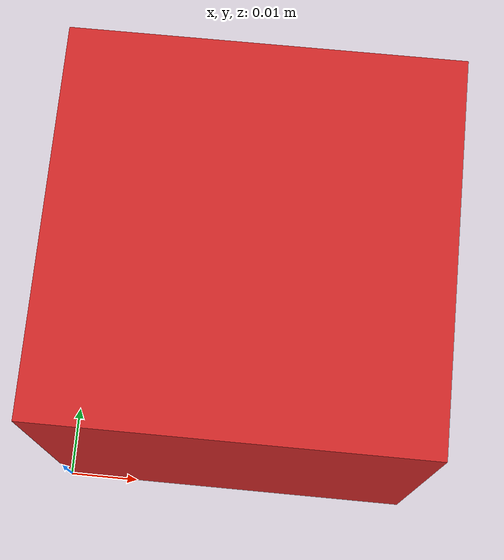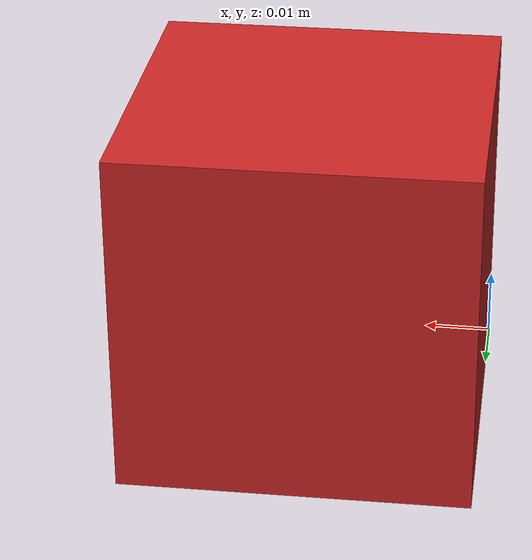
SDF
<?xml version="1.0" encoding="UTF-8"?>
<sdf version="1.6">
    <model name="block">
        <link name="piece">
            <inertial>
                <pose frame=''>0.025 0.025 0.025 0 -0 0</pose>
                <mass>0.1</mass>
                <inertia>
                    <ixx>0.000416</ixx>
                    <ixy>0</ixy>
                    <ixz>0</ixz>
                    <iyy>0.000416</iyy>
                    <iyz>0</iyz>
                    <izz>0.000416</izz>
                </inertia>
            </inertial>
            <collision name="collision">
                <pose frame=''>0.025 0.025 0.025 0 0 0</pose>
                <geometry>
                    <box>
                        <size>0.05 0.05 0.05</size>
                    </box>
                </geometry>
                <surface>
                    <friction>
                        <ode>
                            <mu>0.1</mu>
                            <mu2>0.1</mu2>
                        </ode>
                    </friction>
                </surface>
            </collision>
            <visual name="visual">
                <pose frame=''>0.025 0.025 0.025 0 0 0</pose>
                <geometry>
                    <box>
                        <size>0.05 0.05 0.05</size>
                    </box>
                </geometry>
                <material>
                    <script>
                        <uri>file://media/materials/scripts/gazebo.material</uri>
                        <name>Gazebo/Red</name>
                    </script>
                </material>
            </visual>
        </link>
    </model>
</sdf>
